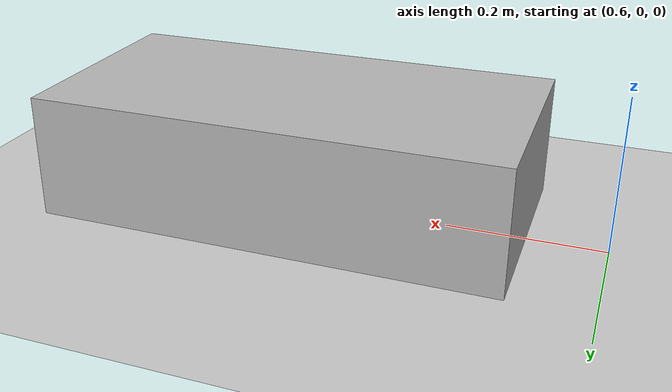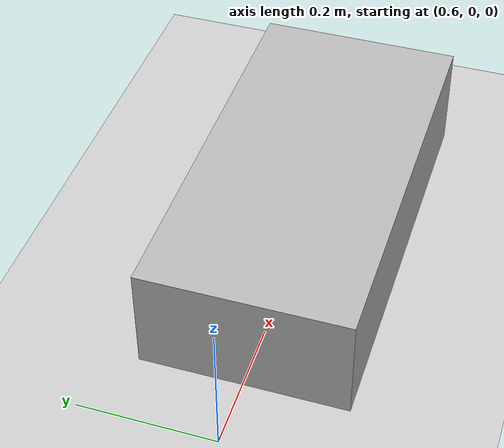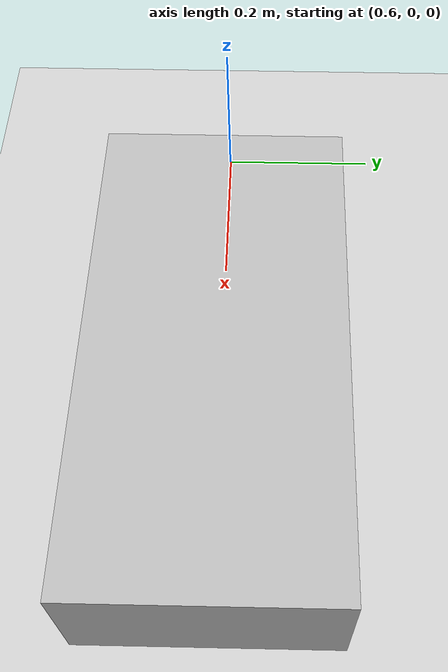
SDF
<?xml version="1.0"?>
<sdf version="1.9"><world name="charging_dock_area"><plugin filename="gz-sim-physics-system" name="gz::sim::systems::Physics"/><plugin filename="gz-sim-scene-broadcaster-system" name="gz::sim::systems::SceneBroadcaster"/><include><uri>model://sun</uri></include><include><uri>model://ground_plane</uri></include><model name="charging_dock"><static>true</static><pose>1.0 0.0 0.08 0 0 0</pose><link name="link"><collision name="c"><geometry><box><size>0.6 0.3 0.16</size></box></geometry></collision><visual name="v"><geometry><box><size>0.6 0.3 0.16</size></box></geometry></visual></link></model></world></sdf>
